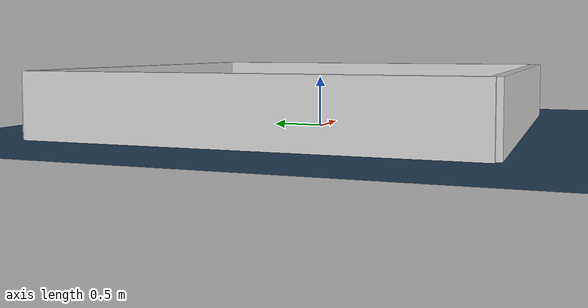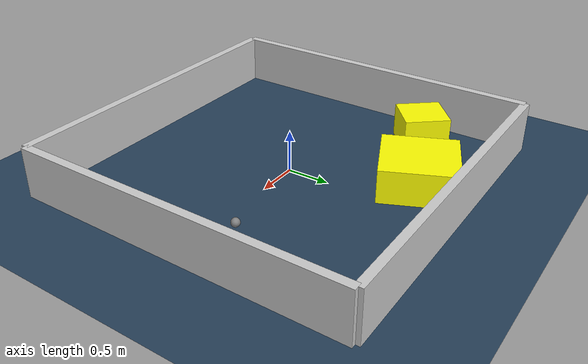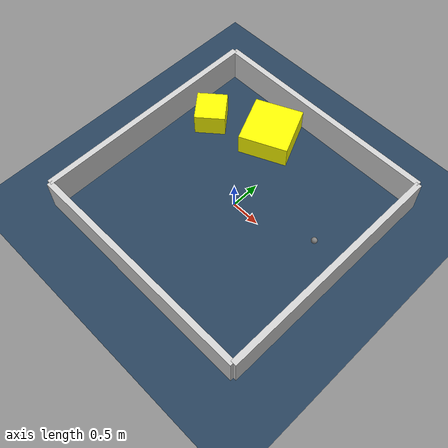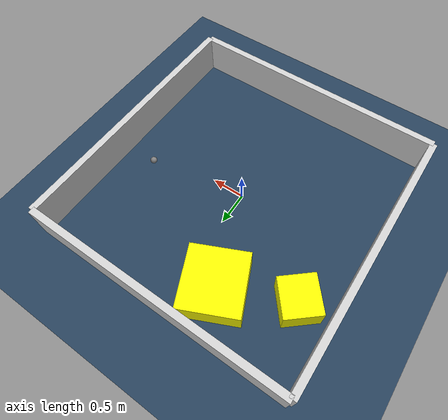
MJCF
<?xml version="1.0" ?>
<mujoco model="generated_environment">
  <option timestep="0.01" integrator="RK4" cone="elliptic"/>
  <default>
    <geom density="1"/>
  </default>
  <asset>
    <texture builtin="gradient" height="3072" rgb1="0.3 0.5 0.7" rgb2="0 0 0" type="skybox" width="512"/>
    <texture builtin="checker" height="300" mark="edge" markrgb="0.8 0.8 0.8" name="groundplane" rgb1="0.2 0.3 0.4" rgb2="0.1 0.2 0.3" type="2d" width="300"/>
    <material name="groundplane" reflectance="0.2" texrepeat="5 5" texture="groundplane" texuniform="true"/>
    <material name="robot" rgba="0.0 1.0 0.0 1"/>
  </asset>
  <worldbody>
    <light dir="0 0 -1" directional="true" pos="0 0 1.5"/>
    <geom condim="4" friction="1.0 0.005 0.001" material="groundplane" name="floor" size="0 0 0.05" type="plane"/>
    <body name="walls">
      <geom name="wall_1" condim="4" pos="-2.0 0.0 0.3" rgba="0.800000011920929 0.800000011920929 0.800000011920929 1.0" size="0.05 2.0 0.3" type="box"/>
      <geom name="wall_2" condim="4" pos="2.0 0.0 0.3" rgba="0.800000011920929 0.800000011920929 0.800000011920929 1.0" size="0.05 2.0 0.3" type="box"/>
      <geom name="wall_3" condim="4" pos="0.0 -2.0 0.3" rgba="0.800000011920929 0.800000011920929 0.800000011920929 1.0" size="2.0 0.05 0.3" type="box"/>
      <geom name="wall_4" condim="4" pos="0.0 2.0 0.3" rgba="0.800000011920929 0.800000011920929 0.800000011920929 1.0" size="2.0 0.05 0.3" type="box"/>
    </body>
    <body name="robot">
      <joint name="joint_x" type="slide" pos="0 0 0" axis="1 0 0"/>
      <joint name="joint_y" type="slide" pos="0 0 0" axis="0 1 0"/>
      <geom name="robot" type="sphere" pos="1.4051259016668713 0.31699647186859536 0.2" size="0.05" mass="5." friction="1.0 0.005 0.0001" condim="4"/>
      <site name="sensor_ball"/>
    </body>
    <body name="obstacle_1_movable">
      <geom name="obstacle_1_movable" condim="4" pos="-0.5034759053837048 1.3657780038846181 0.2" euler="0 0 24.473746939944434" friction="1.0 0.005 0.001" rgba="1 1 0 1" size="0.42000197253561045 0.43797233925637385 0.2" type="box" mass="0.1"/>
      <joint type="free"/>
    </body>
    <body name="obstacle_2_movable">
      <geom name="obstacle_2_movable" condim="4" pos="-1.499678796411334 0.9340262267725987 0.2" euler="0 0 220.2913446125046" friction="1.0 0.005 0.001" rgba="1 1 0 1" size="0.2603538669066229 0.2733440079078484 0.2" type="box" mass="0.1"/>
      <joint type="free"/>
    </body>
  </worldbody>
  <actuator>
    <motor name="actuator_x" joint="joint_x" gear="1" ctrlrange="-1 1"/>
    <motor name="actuator_y" joint="joint_y" gear="1" ctrlrange="-1 1"/>
  </actuator>
</mujoco>
